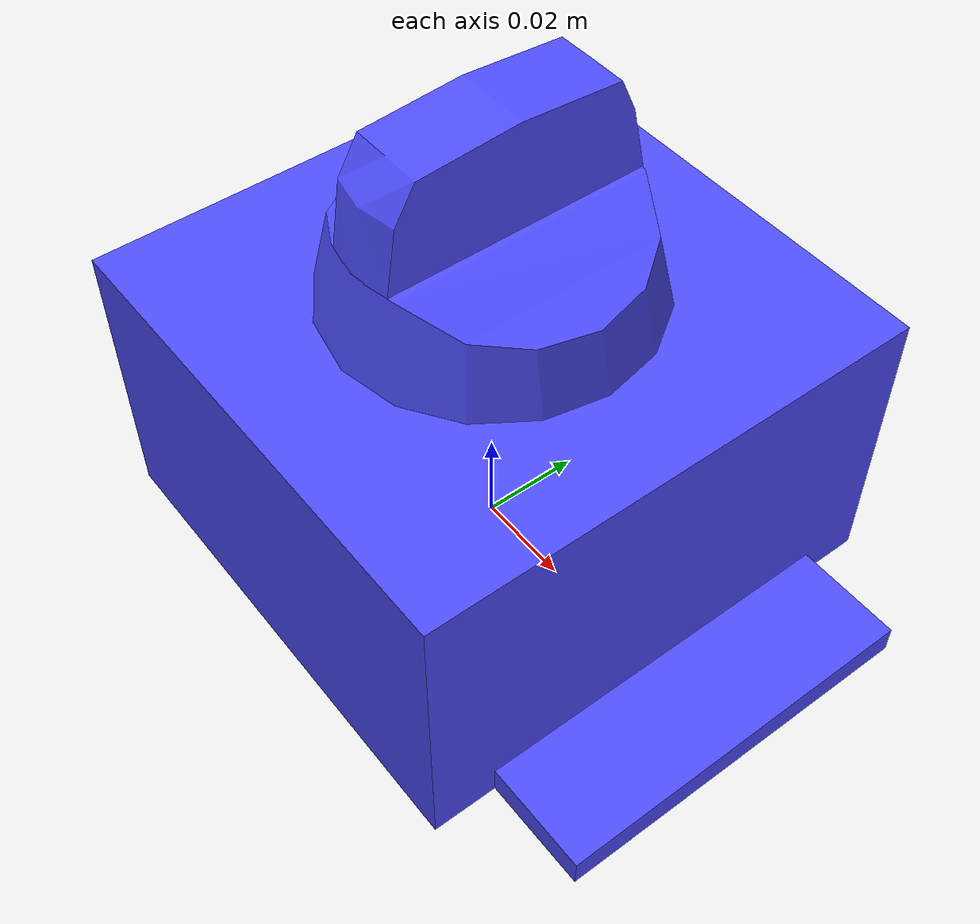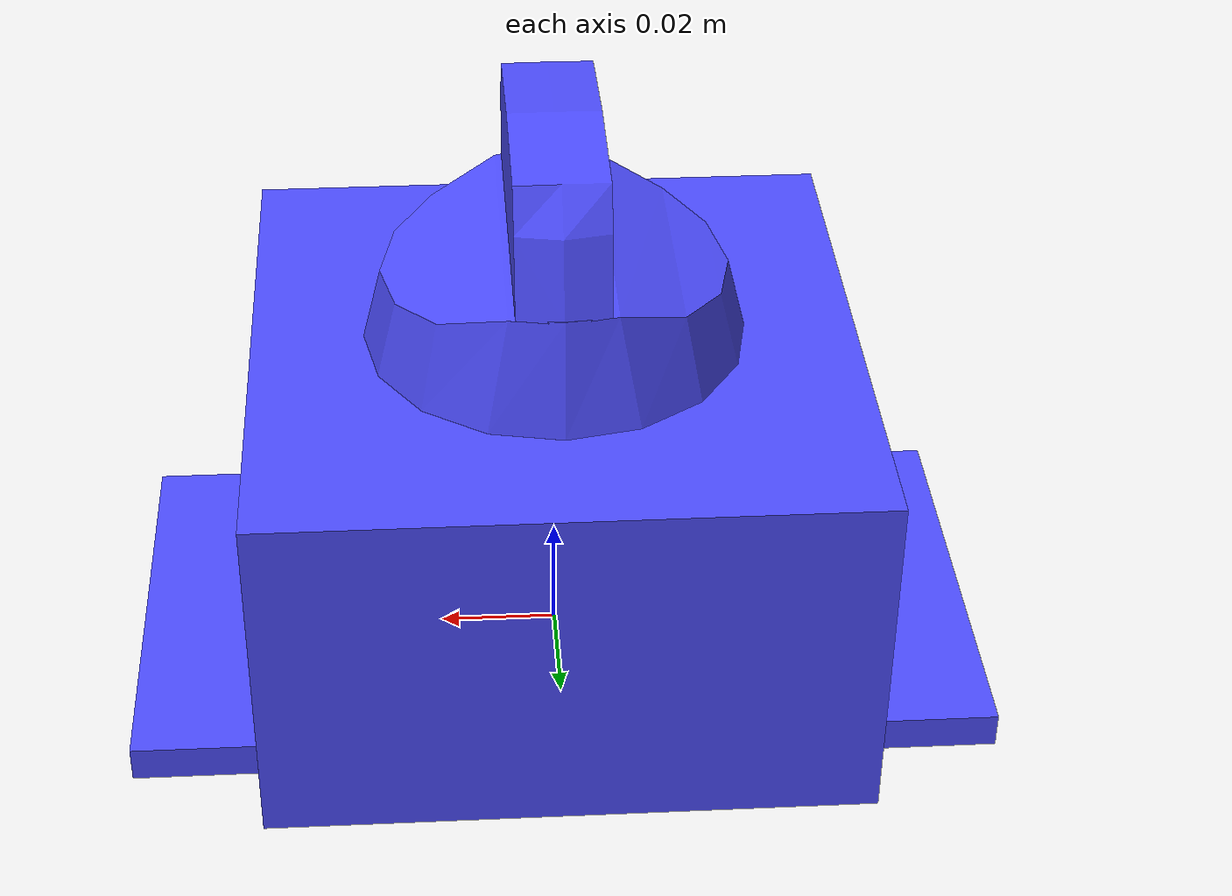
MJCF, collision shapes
<?xml version="1.0"?>
<mujoco model="knob_assembly">
  <include file="assets/knob_assembly_dependencies.xml"/>
  <worldbody>
    <include file="assets/knob_assembly_link.xml"/>
    <light directional="true" attenuation=".01 .01 .01" diffuse=".7 .7 .65" specular="0.3 0.3 0.3" pos="2 -2 4" dir="-.5 .5 -1"/>
    <light directional="false" attenuation=".15 .15 .15" diffuse=".3 .3 .3" specular="0.3 0.3 0.3" pos="-6 -6 5" dir="-.5 .5 -1"/>
    <light directional="false" attenuation=".15 .15 .15" diffuse=".3 .3 .3" specular="0.3 0.3 0.3" pos="-6 -6 5" dir="-.5 .5 -1"/>
    <light directional="false" attenuation=".15 .15 .15" diffuse=".3 .3 .3" specular="0.3 0.3 0.3" pos="6 6 5" dir="-.5 .5 -1"/>
  </worldbody>
</mujoco>

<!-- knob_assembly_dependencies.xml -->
<mujocoinclude>
  <compiler inertiafromgeom="auto" inertiagrouprange="4 4" angle="radian"/>
  <size njmax="1000" nconmax="500"/>
  <asset>
    <material name="collision" rgba="0.3 0.3 1 0.5"/>
    <material name="white" shininess="0.5" rgba="0.9 0.9 0.9 1.0"/>
    <mesh name="Knob" file="meshes/Knob.stl"/>
    <mesh name="knob_assembly" file="meshes/knob_assembly.stl"/>
    <mesh name="knob_collision0" file="meshes/knob_collision0.stl"/>
    <mesh name="knob_collision1" file="meshes/knob_collision1.stl"/>
    <mesh name="Knob_mesh" file="meshes/Knob_mesh.stl"/>
  </asset>
  <visual>
    <map fogstart="1.5" fogend="5" force="0.1" znear="0.1"/>
    <quality shadowsize="16384" offsamples="24"/>
    <global offwidth="800" offheight="800"/>
  </visual>
  <default>
    <default class="knob_assembly">
      <joint limited="true" damping="1"/>
      <geom contype="0" conaffinity="0" group="1" type="mesh"/>
      <position ctrllimited="true"/>
      <default class="collision">
        <geom contype="1" conaffinity="1" condim="4" group="4" material="collision"/>
      </default>
    </default>
  </default>
  <actuator>
    <position name="knob_link" kp="2" joint="knob_joint" class="knob_assembly" ctrlrange="-1.57 1.57"/>
  </actuator>
</mujocoinclude>

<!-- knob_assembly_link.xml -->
<mujocoinclude>
  <body childclass="knob_assembly">
    <body name="knob_assembly_link">
      <geom mesh="knob_assembly" pos="0 -0.001 0" material="white"/>
      <geom pos="0 0 0.03" type="box" class="collision" size="0.05 0.051 0.03"/>
      <geom pos="0.061 0 0.003" type="box" class="collision" size="0.011 0.038 0.003"/>
      <geom pos="-0.061 0 0.003" type="box" class="collision" size="0.011 0.038 0.003"/>
      <body name="knob_link" pos="0 0 0.061">
        <joint name="knob_joint" axis="0 0 1" limited="true" range="-1.57 1.57"/>
        <geom mesh="Knob" material="white"/>
        <geom mesh="Knob_mesh" material="white"/>
        <geom mesh="knob_collision0" type="mesh" class="collision"/>
        <geom mesh="knob_collision1" pos="0 0 0.028" type="mesh" class="collision"/>
      </body>
    </body>
  </body>
</mujocoinclude>
